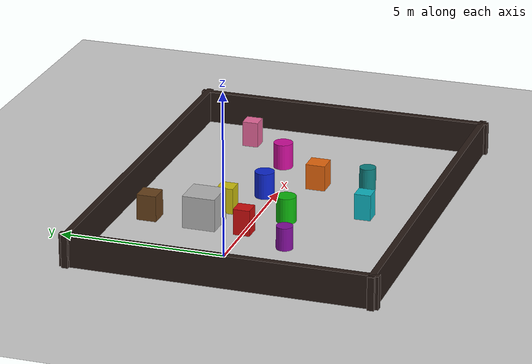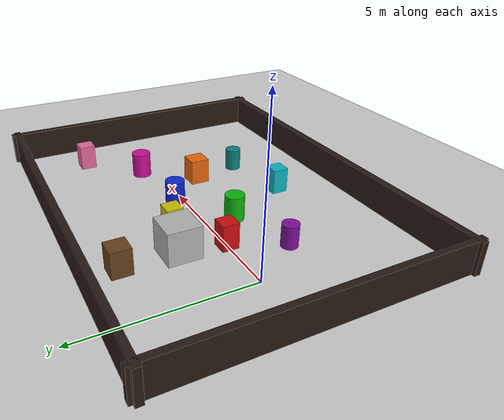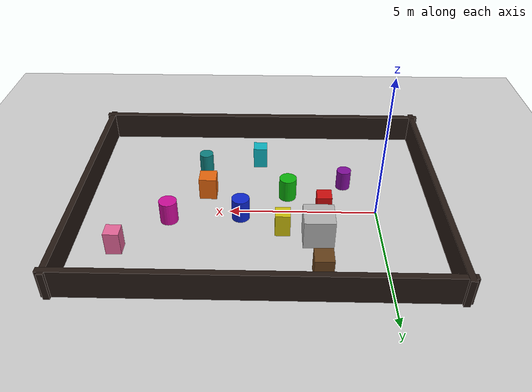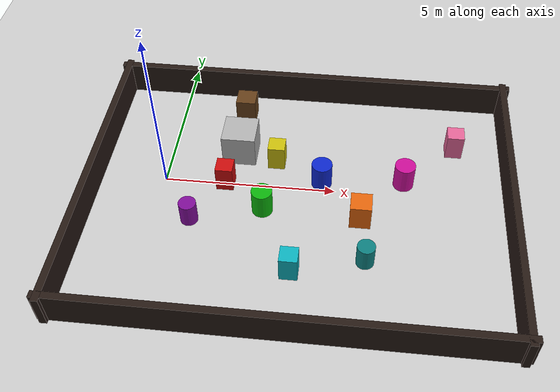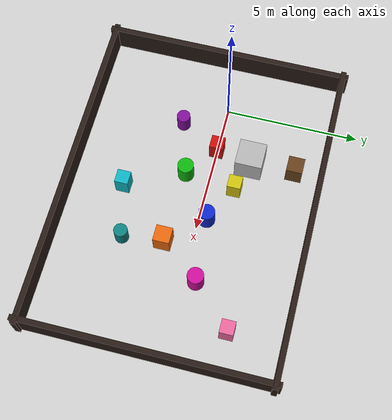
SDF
<sdf version='1.10'>
  <world name='empty'>
    <physics name='1ms' type='ignored'>
      <max_step_size>0.001</max_step_size>
      <real_time_factor>1</real_time_factor>
      <real_time_update_rate>1000</real_time_update_rate>
    </physics>
    <plugin name='gz::sim::systems::Physics' filename='gz-sim-physics-system'/>
    <plugin name='gz::sim::systems::UserCommands' filename='gz-sim-user-commands-system'/>
    <plugin name='gz::sim::systems::SceneBroadcaster' filename='gz-sim-scene-broadcaster-system'/>
    <plugin name='gz::sim::systems::Contact' filename='gz-sim-contact-system'/>
    <plugin name='gz::sim::systems::Sensors' filename='gz-sim-sensors-system'>
      <render_engine>ogre2</render_engine>
    </plugin>
    <gravity>0 0 -9.8000000000000007</gravity>
    <magnetic_field>5.5644999999999998e-06 2.2875799999999999e-05 -4.2388400000000002e-05</magnetic_field>
    <atmosphere type='adiabatic'/>
    <scene>
      <ambient>0.400000006 0.400000006 0.400000006 1</ambient>
      <background>0.699999988 0.699999988 0.699999988 1</background>
      <shadows>true</shadows>
    </scene>
    <model name='ground_plane'>
      <static>true</static>
      <link name='link'>
        <collision name='collision'>
          <geometry>
            <plane>
              <normal>0 0 1</normal>
              <size>100 100</size>
            </plane>
          </geometry>
          <surface>
            <friction>
              <ode/>
            </friction>
            <bounce/>
            <contact/>
          </surface>
        </collision>
        <visual name='visual'>
          <geometry>
            <plane>
              <normal>0 0 1</normal>
              <size>100 100</size>
            </plane>
          </geometry>
          <material>
            <ambient>0.800000012 0.800000012 0.800000012 1</ambient>
            <diffuse>0.800000012 0.800000012 0.800000012 1</diffuse>
            <specular>0.800000012 0.800000012 0.800000012 1</specular>
          </material>
        </visual>
        <pose>0 0 0 0 0 0</pose>
        <inertial>
          <pose>0 0 0 0 0 0</pose>
          <mass>1</mass>
          <inertia>
            <ixx>1</ixx>
            <ixy>0</ixy>
            <ixz>0</ixz>
            <iyy>1</iyy>
            <iyz>0</iyz>
            <izz>1</izz>
          </inertia>
        </inertial>
        <enable_wind>false</enable_wind>
      </link>
      <pose>0 0 0 0 0 0</pose>
      <self_collide>false</self_collide>
    </model>
    <model name='box'>
      <pose>2.0577700000000001 1.32413 0.5 6.2287699999999997e-22 9.3279700000000006e-22 -3.63155e-22</pose>
      <link name='box_link'>
        <inertial>
          <inertia>
            <ixx>0.16666</ixx>
            <ixy>0</ixy>
            <ixz>0</ixz>
            <iyy>0.16666</iyy>
            <iyz>0</iyz>
            <izz>0.16666</izz>
          </inertia>
          <mass>1</mass>
          <pose>0 0 0 0 0 0</pose>
        </inertial>
        <collision name='box_collision'>
          <geometry>
            <box>
              <size>1 1 1</size>
            </box>
          </geometry>
          <surface>
            <friction>
              <ode/>
            </friction>
            <bounce/>
            <contact/>
          </surface>
        </collision>
        <visual name='box_visual'>
          <geometry>
            <box>
              <size>1 1 1</size>
            </box>
          </geometry>
          <material>
            <ambient>0.300000012 0.300000012 0.300000012 1</ambient>
            <diffuse>0.699999988 0.699999988 0.699999988 1</diffuse>
            <specular>1 1 1 1</specular>
          </material>
        </visual>
        <pose>0 0 0 0 0 0</pose>
        <enable_wind>false</enable_wind>
      </link>
      <static>false</static>
      <self_collide>false</self_collide>
    </model>
    <model name='red_box_1'>
      <static>true</static>
      <pose>1.8 0 0.4 0 0 0</pose>
      <link name='link'>
        <collision name='collision'>
          <geometry>
            <box>
              <size>0.5 0.5 0.8</size>
            </box>
          </geometry>
        </collision>
        <visual name='visual'>
          <geometry>
            <box>
              <size>0.5 0.5 0.8</size>
            </box>
          </geometry>
          <material>
            <ambient>0.8 0.05 0.05 1</ambient>
            <diffuse>0.8 0.05 0.05 1</diffuse>
            <specular>0.2 0.2 0.2 1</specular>
          </material>
        </visual>
      </link>
    </model>
    <model name='green_cylinder_1'>
      <static>true</static>
      <pose>3.0 -0.9 0.4 0 0 0</pose>
      <link name='link'>
        <collision name='collision'>
          <geometry>
            <cylinder>
              <radius>0.3</radius>
              <length>0.8</length>
            </cylinder>
          </geometry>
        </collision>
        <visual name='visual'>
          <geometry>
            <cylinder>
              <radius>0.3</radius>
              <length>0.8</length>
            </cylinder>
          </geometry>
          <material>
            <ambient>0.05 0.7 0.05 1</ambient>
            <diffuse>0.05 0.7 0.05 1</diffuse>
            <specular>0.2 0.2 0.2 1</specular>
          </material>
        </visual>
      </link>
    </model>
    <model name='yellow_box_1'>
      <static>true</static>
      <pose>3.2 1.0 0.4 0 0 0</pose>
      <link name='link'>
        <collision name='collision'>
          <geometry>
            <box>
              <size>0.5 0.5 0.8</size>
            </box>
          </geometry>
        </collision>
        <visual name='visual'>
          <geometry>
            <box>
              <size>0.5 0.5 0.8</size>
            </box>
          </geometry>
          <material>
            <ambient>0.8 0.75 0.05 1</ambient>
            <diffuse>0.8 0.75 0.05 1</diffuse>
            <specular>0.2 0.2 0.2 1</specular>
          </material>
        </visual>
      </link>
    </model>
    <model name='blue_cylinder_1'>
      <static>true</static>
      <pose>4.6 0.3 0.4 0 0 0</pose>
      <link name='link'>
        <collision name='collision'>
          <geometry>
            <cylinder>
              <radius>0.3</radius>
              <length>0.8</length>
            </cylinder>
          </geometry>
        </collision>
        <visual name='visual'>
          <geometry>
            <cylinder>
              <radius>0.3</radius>
              <length>0.8</length>
            </cylinder>
          </geometry>
          <material>
            <ambient>0.05 0.15 0.8 1</ambient>
            <diffuse>0.05 0.15 0.8 1</diffuse>
            <specular>0.2 0.2 0.2 1</specular>
          </material>
        </visual>
      </link>
    </model>
    <model name='orange_box_1'>
      <static>true</static>
      <pose>5.8 -1.0 0.4 0 0 0</pose>
      <link name='link'>
        <collision name='collision'>
          <geometry>
            <box>
              <size>0.6 0.6 0.8</size>
            </box>
          </geometry>
        </collision>
        <visual name='visual'>
          <geometry>
            <box>
              <size>0.6 0.6 0.8</size>
            </box>
          </geometry>
          <material>
            <ambient>0.9 0.4 0.05 1</ambient>
            <diffuse>0.9 0.4 0.05 1</diffuse>
            <specular>0.2 0.2 0.2 1</specular>
          </material>
        </visual>
      </link>
    </model>
    <model name='purple_cylinder_1'>
      <static>true</static>
      <pose>1.0 -1.5 0.4 0 0 0</pose>
      <link name='link'>
        <collision name='collision'>
          <geometry>
            <cylinder>
              <radius>0.25</radius>
              <length>0.7</length>
            </cylinder>
          </geometry>
        </collision>
        <visual name='visual'>
          <geometry>
            <cylinder>
              <radius>0.25</radius>
              <length>0.7</length>
            </cylinder>
          </geometry>
          <material>
            <ambient>0.5 0.05 0.6 1</ambient>
            <diffuse>0.5 0.05 0.6 1</diffuse>
            <specular>0.2 0.2 0.2 1</specular>
          </material>
        </visual>
      </link>
    </model>
    <model name='cyan_box_1'>
      <static>true</static>
      <pose>4.0 -3.0 0.4 0 0 0</pose>
      <link name='link'>
        <collision name='collision'>
          <geometry>
            <box>
              <size>0.5 0.5 0.8</size>
            </box>
          </geometry>
        </collision>
        <visual name='visual'>
          <geometry>
            <box>
              <size>0.5 0.5 0.8</size>
            </box>
          </geometry>
          <material>
            <ambient>0.05 0.7 0.75 1</ambient>
            <diffuse>0.05 0.7 0.75 1</diffuse>
            <specular>0.2 0.2 0.2 1</specular>
          </material>
        </visual>
      </link>
    </model>
    <model name='magenta_cylinder_1'>
      <static>true</static>
      <pose>7.0 0.5 0.4 0 0 0</pose>
      <link name='link'>
        <collision name='collision'>
          <geometry>
            <cylinder>
              <radius>0.3</radius>
              <length>0.8</length>
            </cylinder>
          </geometry>
        </collision>
        <visual name='visual'>
          <geometry>
            <cylinder>
              <radius>0.3</radius>
              <length>0.8</length>
            </cylinder>
          </geometry>
          <material>
            <ambient>0.8 0.05 0.6 1</ambient>
            <diffuse>0.8 0.05 0.6 1</diffuse>
            <specular>0.2 0.2 0.2 1</specular>
          </material>
        </visual>
      </link>
    </model>
    <model name='brown_box_1'>
      <static>true</static>
      <pose>2.0 3.0 0.4 0 0 0</pose>
      <link name='link'>
        <collision name='collision'>
          <geometry>
            <box>
              <size>0.6 0.6 0.8</size>
            </box>
          </geometry>
        </collision>
        <visual name='visual'>
          <geometry>
            <box>
              <size>0.6 0.6 0.8</size>
            </box>
          </geometry>
          <material>
            <ambient>0.4 0.25 0.1 1</ambient>
            <diffuse>0.4 0.25 0.1 1</diffuse>
            <specular>0.1 0.1 0.1 1</specular>
          </material>
        </visual>
      </link>
    </model>
    <model name='teal_cylinder_1'>
      <static>true</static>
      <pose>6.0 -2.5 0.4 0 0 0</pose>
      <link name='link'>
        <collision name='collision'>
          <geometry>
            <cylinder>
              <radius>0.25</radius>
              <length>0.7</length>
            </cylinder>
          </geometry>
        </collision>
        <visual name='visual'>
          <geometry>
            <cylinder>
              <radius>0.25</radius>
              <length>0.7</length>
            </cylinder>
          </geometry>
          <material>
            <ambient>0.05 0.5 0.5 1</ambient>
            <diffuse>0.05 0.5 0.5 1</diffuse>
            <specular>0.2 0.2 0.2 1</specular>
          </material>
        </visual>
      </link>
    </model>
    <model name='pink_box_1'>
      <static>true</static>
      <pose>8.5 2.0 0.4 0 0 0</pose>
      <link name='link'>
        <collision name='collision'>
          <geometry>
            <box>
              <size>0.5 0.5 0.8</size>
            </box>
          </geometry>
        </collision>
        <visual name='visual'>
          <geometry>
            <box>
              <size>0.5 0.5 0.8</size>
            </box>
          </geometry>
          <material>
            <ambient>0.9 0.4 0.6 1</ambient>
            <diffuse>0.9 0.4 0.6 1</diffuse>
            <specular>0.2 0.2 0.2 1</specular>
          </material>
        </visual>
      </link>
    </model>
    <model name='boundary_fence'>
      <static>true</static>
      <link name='north_wall'>
        <pose>4 4 0.5 0 0 0</pose>
        <collision name='collision'>
          <geometry>
            <box>
              <size>12.4 0.2 1.0</size>
            </box>
          </geometry>
        </collision>
        <visual name='visual'>
          <geometry>
            <box>
              <size>12.4 0.2 1.0</size>
            </box>
          </geometry>
          <material>
            <ambient>0.15 0.1 0.08 1</ambient>
            <diffuse>0.15 0.1 0.08 1</diffuse>
            <specular>0.1 0.1 0.1 1</specular>
          </material>
        </visual>
      </link>
      <link name='south_wall'>
        <pose>4 -5 0.5 0 0 0</pose>
        <collision name='collision'>
          <geometry>
            <box>
              <size>12.4 0.2 1.0</size>
            </box>
          </geometry>
        </collision>
        <visual name='visual'>
          <geometry>
            <box>
              <size>12.4 0.2 1.0</size>
            </box>
          </geometry>
          <material>
            <ambient>0.15 0.1 0.08 1</ambient>
            <diffuse>0.15 0.1 0.08 1</diffuse>
            <specular>0.1 0.1 0.1 1</specular>
          </material>
        </visual>
      </link>
      <link name='east_wall'>
        <pose>10 -0.5 0.5 0 0 0</pose>
        <collision name='collision'>
          <geometry>
            <box>
              <size>0.2 9.4 1.0</size>
            </box>
          </geometry>
        </collision>
        <visual name='visual'>
          <geometry>
            <box>
              <size>0.2 9.4 1.0</size>
            </box>
          </geometry>
          <material>
            <ambient>0.15 0.1 0.08 1</ambient>
            <diffuse>0.15 0.1 0.08 1</diffuse>
            <specular>0.1 0.1 0.1 1</specular>
          </material>
        </visual>
      </link>
      <link name='west_wall'>
        <pose>-2 -0.5 0.5 0 0 0</pose>
        <collision name='collision'>
          <geometry>
            <box>
              <size>0.2 9.4 1.0</size>
            </box>
          </geometry>
        </collision>
        <visual name='visual'>
          <geometry>
            <box>
              <size>0.2 9.4 1.0</size>
            </box>
          </geometry>
          <material>
            <ambient>0.15 0.1 0.08 1</ambient>
            <diffuse>0.15 0.1 0.08 1</diffuse>
            <specular>0.1 0.1 0.1 1</specular>
          </material>
        </visual>
      </link>
    </model>
    <light name='sun' type='directional'>
      <pose>0 0 10 0 0 0</pose>
      <cast_shadows>true</cast_shadows>
      <intensity>1</intensity>
      <direction>-0.5 0.10000000000000001 -0.90000000000000002</direction>
      <diffuse>0.800000012 0.800000012 0.800000012 1</diffuse>
      <specular>0.200000003 0.200000003 0.200000003 1</specular>
      <attenuation>
        <range>1000</range>
        <linear>0.0099999997764825821</linear>
        <constant>0.89999997615814209</constant>
        <quadratic>0.0010000000474974513</quadratic>
      </attenuation>
      <spot>
        <inner_angle>0</inner_angle>
        <outer_angle>0</outer_angle>
        <falloff>0</falloff>
      </spot>
    </light>
  </world>
</sdf>
